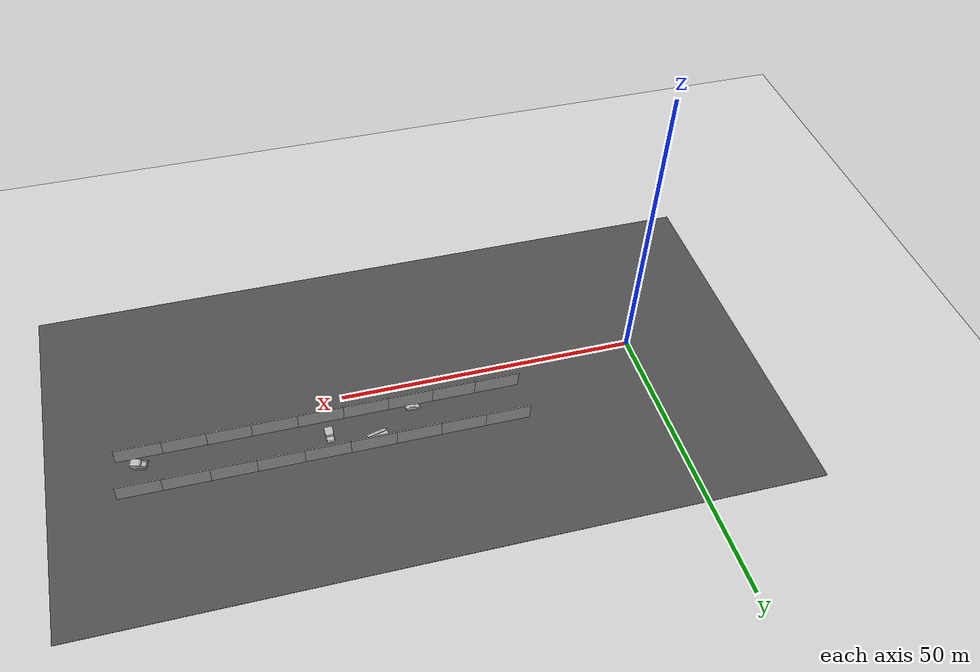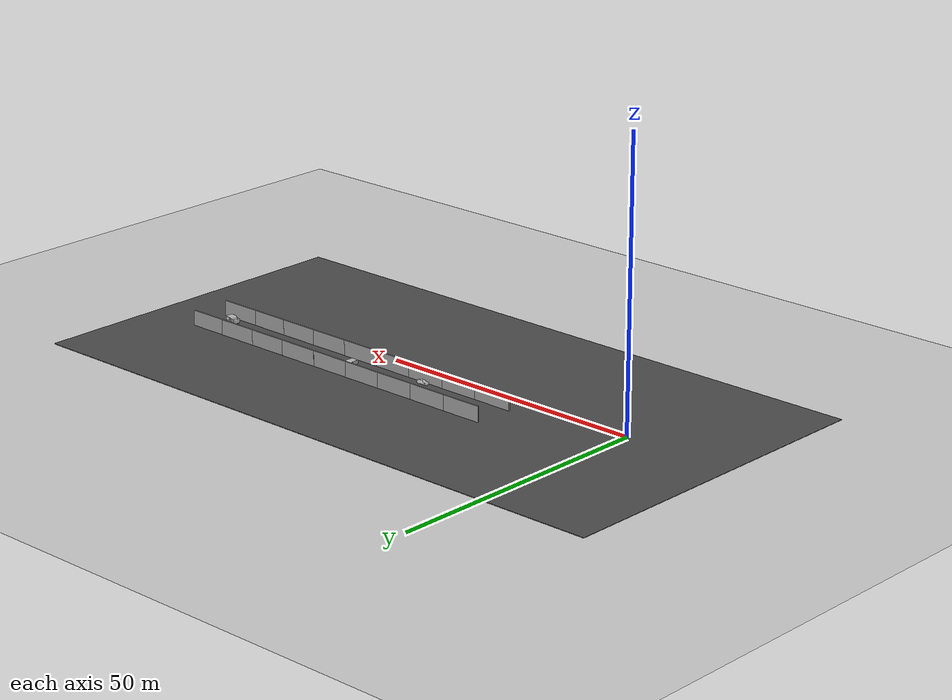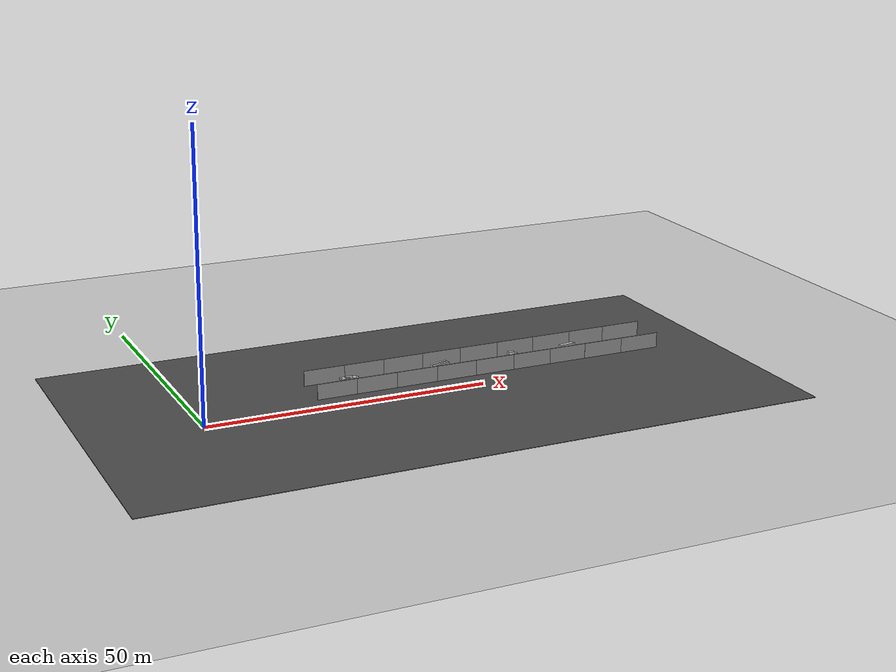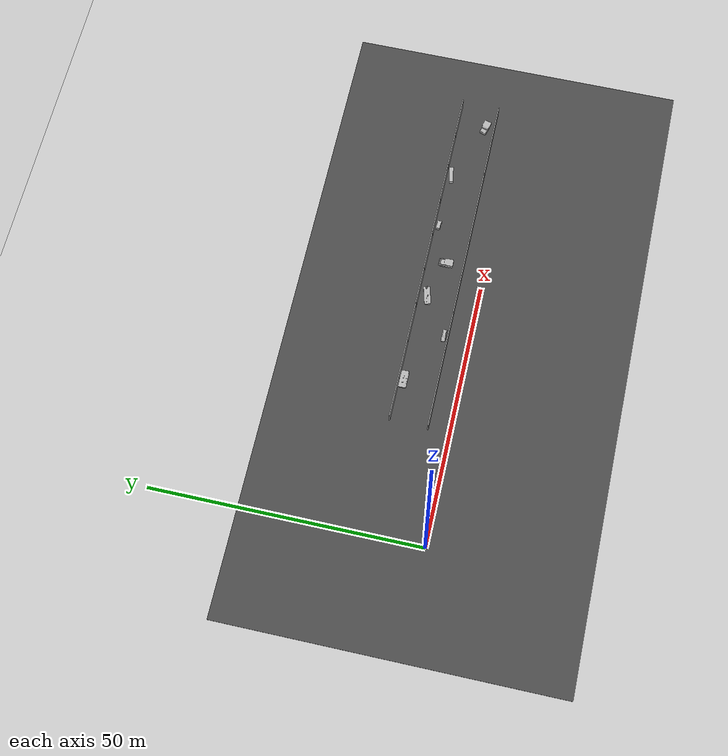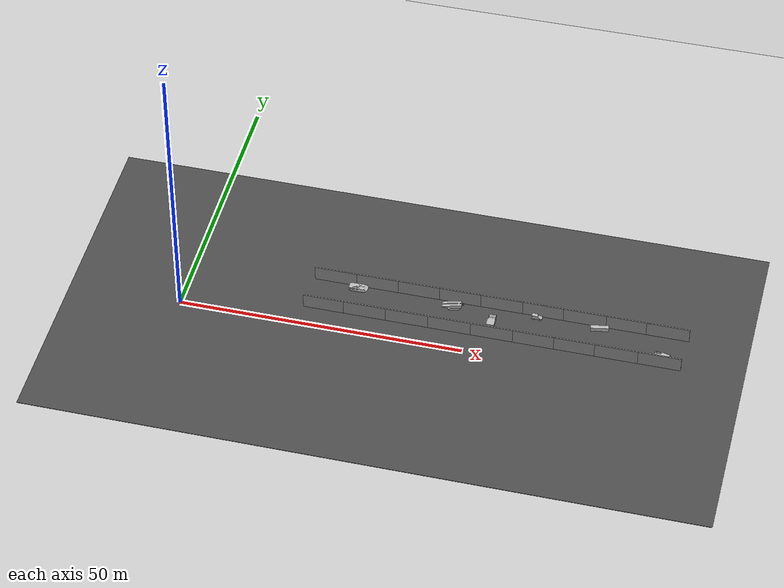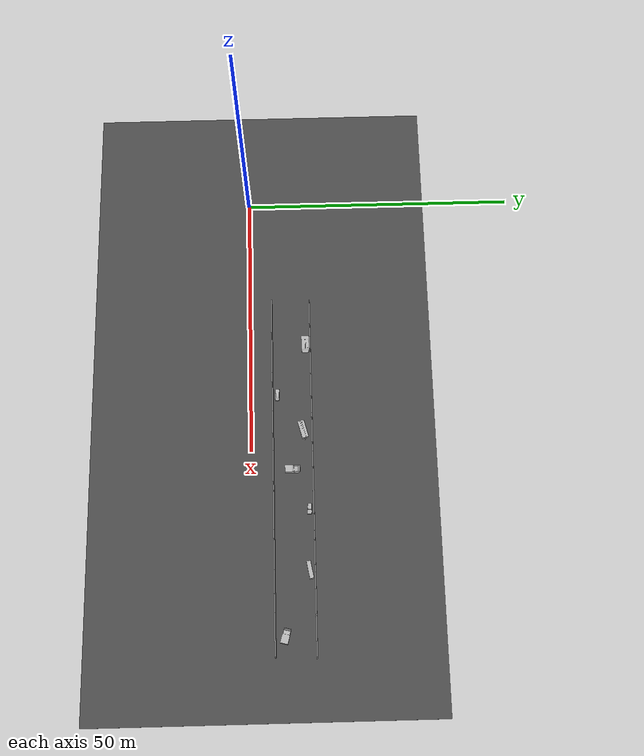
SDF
<sdf version="1.6">
 <world name="default">
  <light name="sun" type="directional">
   <pose>0 0 10 0 -0 0</pose>
   <diffuse>0.8 0.8 0.8 1</diffuse>
   <specular>0.2 0.2 0.2 1</specular>
   <attenuation>
    <range>1000</range>
    <constant>0.9</constant>
    <linear>0.01</linear>
    <quadratic>0.001</quadratic>
   </attenuation>
   <direction>-0.5 0.1 -0.9</direction>
  </light>
  <model name="ground_plane">
   <static>1</static>
   <link name="link">
    <collision name="collision">
     <geometry><plane><normal>0 0 1</normal><size>100 100</size></plane></geometry>
     <surface>
      <contact><collide_bitmask>65535</collide_bitmask></contact>
      <friction><ode><mu>100</mu><mu2>50</mu2></ode></friction>
     </surface>
    </collision>
    <visual name="visual">
     <cast_shadows>0</cast_shadows>
     <geometry><plane><normal>0 0 1</normal><size>100 100</size></plane></geometry>
     <material>
      <script><uri>file://media/materials/scripts/gazebo.material</uri><name>Gazebo/Grey</name></script>
     </material>
    </visual>
   </link>
  </model>
  <gravity>0 0 -9.8</gravity>
  <magnetic_field>6e-06 2.3e-05 -4.2e-05</magnetic_field>
  <atmosphere type="adiabatic"/>
  <physics name="default_physics" default="0" type="ode">
   <max_step_size>0.001</max_step_size>
   <real_time_factor>1</real_time_factor>
   <real_time_update_rate>1000</real_time_update_rate>
  </physics>
  <scene><ambient>0.4 0.4 0.4 1</ambient><background>0.7 0.7 0.7 1</background><shadows>1</shadows></scene>
  <audio><device>default</device></audio>
  <spherical_coordinates>
   <surface_model>EARTH_WGS84</surface_model>
   <latitude_deg>0</latitude_deg>
   <longitude_deg>0</longitude_deg>
   <elevation>0</elevation>
   <heading_deg>0</heading_deg>
  </spherical_coordinates>
  <light name="sun" type="directional">
   <pose>0 0 10 0 -0 0</pose>
   <diffuse>0.8 0.8 0.8 1</diffuse>
   <specular>0.2 0.2 0.2 1</specular>
   <attenuation>
    <range>1000</range>
    <constant>0.9</constant>
    <linear>0.01</linear>
    <quadratic>0.001</quadratic>
   </attenuation>
   <direction>-0.5 0.1 -0.9</direction>
  </light>
  <light name="sun" type="directional">
   <pose>0 0 10 0 -0 0</pose>
   <diffuse>0.8 0.8 0.8 1</diffuse>
   <specular>0.2 0.2 0.2 1</specular>
   <attenuation>
    <range>1000</range>
    <constant>0.9</constant>
    <linear>0.01</linear>
    <quadratic>0.001</quadratic>
   </attenuation>
   <direction>-0.5 0.1 -0.9</direction>
  </light>
  <physics name="default_physics" default="0" type="ode">
   <ode>
    <solver>
     <type>quick</type>
     <iters>10</iters>
     <sor>1</sor>
     <use_dynamic_moi_rescaling>0</use_dynamic_moi_rescaling>
    </solver>
    <constraints>
     <cfm>0</cfm>
     <erp>0.2</erp>
     <contact_max_correcting_vel>100</contact_max_correcting_vel>
     <contact_surface_layer>0.001</contact_surface_layer>
    </constraints>
   </ode>
   <max_step_size>0.004</max_step_size>
   <real_time_factor>1</real_time_factor>
   <real_time_update_rate>250</real_time_update_rate>
  </physics>
  <model name="grey_wall">
   <static>1</static>
   <link name="link">
    <pose>0 0 1.4 0 -0 0</pose>
    <collision name="collision"><geometry><box><size>7.5 0.2 2.8</size></box></geometry></collision>
    <visual name="visual">
     <cast_shadows>0</cast_shadows>
     <geometry><box><size>7.5 0.2 2.8</size></box></geometry>
     <material>
      <script>
       <uri>model://grey_wall/materials/scripts</uri>
       <uri>model://grey_wall/materials/textures</uri>
       <name>vrc/grey_wall</name>
      </script>
     </material>
    </visual>
   </link>
   <pose>54.3408 4.09538 0 0 -0 0</pose>
  </model>
  <model name="grey_wall_clone">
   <static>1</static>
   <link name="link">
    <pose>0 0 1.4 0 -0 0</pose>
    <collision name="collision"><geometry><box><size>7.5 0.2 2.8</size></box></geometry></collision>
    <visual name="visual">
     <cast_shadows>0</cast_shadows>
     <geometry><box><size>7.5 0.2 2.8</size></box></geometry>
     <material>
      <script>
       <uri>model://grey_wall/materials/scripts</uri>
       <uri>model://grey_wall/materials/textures</uri>
       <name>vrc/grey_wall</name>
      </script>
     </material>
    </visual>
   </link>
   <pose>61.7868 4.08071 0 0 -0 0</pose>
  </model>
  <model name="grey_wall_clone_0">
   <static>1</static>
   <link name="link">
    <pose>0 0 1.4 0 -0 0</pose>
    <collision name="collision"><geometry><box><size>7.5 0.2 2.8</size></box></geometry></collision>
    <visual name="visual">
     <cast_shadows>0</cast_shadows>
     <geometry><box><size>7.5 0.2 2.8</size></box></geometry>
     <material>
      <script>
       <uri>model://grey_wall/materials/scripts</uri>
       <uri>model://grey_wall/materials/textures</uri>
       <name>vrc/grey_wall</name>
      </script>
     </material>
    </visual>
   </link>
   <pose>68.9621 4.07899 0 0 -0 0</pose>
  </model>
  <model name="grey_wall_clone_1">
   <static>1</static>
   <link name="link">
    <pose>0 0 1.4 0 -0 0</pose>
    <collision name="collision"><geometry><box><size>7.5 0.2 2.8</size></box></geometry></collision>
    <visual name="visual">
     <cast_shadows>0</cast_shadows>
     <geometry><box><size>7.5 0.2 2.8</size></box></geometry>
     <material>
      <script>
       <uri>model://grey_wall/materials/scripts</uri>
       <uri>model://grey_wall/materials/textures</uri>
       <name>vrc/grey_wall</name>
      </script>
     </material>
    </visual>
   </link>
   <pose>76.0179 4.06558 0 0 -0 0</pose>
  </model>
  <model name="grey_wall_clone_2">
   <static>1</static>
   <link name="link">
    <pose>0 0 1.4 0 -0 0</pose>
    <collision name="collision"><geometry><box><size>7.5 0.2 2.8</size></box></geometry></collision>
    <visual name="visual">
     <cast_shadows>0</cast_shadows>
     <geometry><box><size>7.5 0.2 2.8</size></box></geometry>
     <material>
      <script>
       <uri>model://grey_wall/materials/scripts</uri>
       <uri>model://grey_wall/materials/textures</uri>
       <name>vrc/grey_wall</name>
      </script>
     </material>
    </visual>
   </link>
   <pose>83.4833 4.06784 0 0 -0 0</pose>
  </model>
  <model name="grey_wall_clone_3">
   <static>1</static>
   <link name="link">
    <pose>0 0 1.4 0 -0 0</pose>
    <collision name="collision"><geometry><box><size>7.5 0.2 2.8</size></box></geometry></collision>
    <visual name="visual">
     <cast_shadows>0</cast_shadows>
     <geometry><box><size>7.5 0.2 2.8</size></box></geometry>
     <material>
      <script>
       <uri>model://grey_wall/materials/scripts</uri>
       <uri>model://grey_wall/materials/textures</uri>
       <name>vrc/grey_wall</name>
      </script>
     </material>
    </visual>
   </link>
   <pose>46.9037 4.09457 0 0 -0 0</pose>
  </model>
  <model name="grey_wall_clone_4">
   <static>1</static>
   <link name="link">
    <pose>0 0 1.4 0 -0 0</pose>
    <collision name="collision"><geometry><box><size>7.5 0.2 2.8</size></box></geometry></collision>
    <visual name="visual">
     <cast_shadows>0</cast_shadows>
     <geometry><box><size>7.5 0.2 2.8</size></box></geometry>
     <material>
      <script>
       <uri>model://grey_wall/materials/scripts</uri>
       <uri>model://grey_wall/materials/textures</uri>
       <name>vrc/grey_wall</name>
      </script>
     </material>
    </visual>
   </link>
   <pose>39.4192 4.09932 0 0 -0 0</pose>
  </model>
  <model name="grey_wall_clone_5">
   <static>1</static>
   <link name="link">
    <pose>0 0 1.4 0 -0 0</pose>
    <collision name="collision"><geometry><box><size>7.5 0.2 2.8</size></box></geometry></collision>
    <visual name="visual">
     <cast_shadows>0</cast_shadows>
     <geometry><box><size>7.5 0.2 2.8</size></box></geometry>
     <material>
      <script>
       <uri>model://grey_wall/materials/scripts</uri>
       <uri>model://grey_wall/materials/textures</uri>
       <name>vrc/grey_wall</name>
      </script>
     </material>
    </visual>
   </link>
   <pose>31.9554 4.09979 0 0 -0 0</pose>
  </model>
  <model name="grey_wall_clone_6">
   <static>1</static>
   <link name="link">
    <pose>0 0 1.4 0 -0 0</pose>
    <collision name="collision"><geometry><box><size>7.5 0.2 2.8</size></box></geometry></collision>
    <visual name="visual">
     <cast_shadows>0</cast_shadows>
     <geometry><box><size>7.5 0.2 2.8</size></box></geometry>
     <material>
      <script>
       <uri>model://grey_wall/materials/scripts</uri>
       <uri>model://grey_wall/materials/textures</uri>
       <name>vrc/grey_wall</name>
      </script>
     </material>
    </visual>
   </link>
   <pose>24.7785 4.10037 0 0 -0 0</pose>
  </model>
  <model name="grey_wall_clone_6_clone">
   <static>1</static>
   <link name="link">
    <pose>0 0 1.4 0 -0 0</pose>
    <collision name="collision"><geometry><box><size>7.5 0.2 2.8</size></box></geometry></collision>
    <visual name="visual">
     <cast_shadows>0</cast_shadows>
     <geometry><box><size>7.5 0.2 2.8</size></box></geometry>
     <material>
      <script>
       <uri>model://grey_wall/materials/scripts</uri>
       <uri>model://grey_wall/materials/textures</uri>
       <name>vrc/grey_wall</name>
      </script>
     </material>
    </visual>
   </link>
   <pose>25.0385 11.1774 0 0 -0 0</pose>
  </model>
  <model name="grey_wall_clone_6_clone_0">
   <static>1</static>
   <link name="link">
    <pose>0 0 1.4 0 -0 0</pose>
    <collision name="collision"><geometry><box><size>7.5 0.2 2.8</size></box></geometry></collision>
    <visual name="visual">
     <cast_shadows>0</cast_shadows>
     <geometry><box><size>7.5 0.2 2.8</size></box></geometry>
     <material>
      <script>
       <uri>model://grey_wall/materials/scripts</uri>
       <uri>model://grey_wall/materials/textures</uri>
       <name>vrc/grey_wall</name>
      </script>
     </material>
    </visual>
   </link>
   <pose>32.4484 11.1793 0 0 -0 0</pose>
  </model>
  <model name="grey_wall_clone_6_clone_1">
   <static>1</static>
   <link name="link">
    <pose>0 0 1.4 0 -0 0</pose>
    <collision name="collision"><geometry><box><size>7.5 0.2 2.8</size></box></geometry></collision>
    <visual name="visual">
     <cast_shadows>0</cast_shadows>
     <geometry><box><size>7.5 0.2 2.8</size></box></geometry>
     <material>
      <script>
       <uri>model://grey_wall/materials/scripts</uri>
       <uri>model://grey_wall/materials/textures</uri>
       <name>vrc/grey_wall</name>
      </script>
     </material>
    </visual>
   </link>
   <pose>39.8614 11.1887 0 0 -0 0</pose>
  </model>
  <model name="grey_wall_clone_6_clone_2">
   <static>1</static>
   <link name="link">
    <pose>0 0 1.4 0 -0 0</pose>
    <collision name="collision"><geometry><box><size>7.5 0.2 2.8</size></box></geometry></collision>
    <visual name="visual">
     <cast_shadows>0</cast_shadows>
     <geometry><box><size>7.5 0.2 2.8</size></box></geometry>
     <material>
      <script>
       <uri>model://grey_wall/materials/scripts</uri>
       <uri>model://grey_wall/materials/textures</uri>
       <name>vrc/grey_wall</name>
      </script>
     </material>
    </visual>
   </link>
   <pose>47.2014 11.2064 0 0 -0 0</pose>
  </model>
  <model name="grey_wall_clone_6_clone_3">
   <static>1</static>
   <link name="link">
    <pose>0 0 1.4 0 -0 0</pose>
    <collision name="collision"><geometry><box><size>7.5 0.2 2.8</size></box></geometry></collision>
    <visual name="visual">
     <cast_shadows>0</cast_shadows>
     <geometry><box><size>7.5 0.2 2.8</size></box></geometry>
     <material>
      <script>
       <uri>model://grey_wall/materials/scripts</uri>
       <uri>model://grey_wall/materials/textures</uri>
       <name>vrc/grey_wall</name>
      </script>
     </material>
    </visual>
   </link>
   <pose>54.5777 11.2073 0 0 -0 0</pose>
  </model>
  <model name="grey_wall_clone_6_clone_4">
   <static>1</static>
   <link name="link">
    <pose>0 0 1.4 0 -0 0</pose>
    <collision name="collision"><geometry><box><size>7.5 0.2 2.8</size></box></geometry></collision>
    <visual name="visual">
     <cast_shadows>0</cast_shadows>
     <geometry><box><size>7.5 0.2 2.8</size></box></geometry>
     <material>
      <script>
       <uri>model://grey_wall/materials/scripts</uri>
       <uri>model://grey_wall/materials/textures</uri>
       <name>vrc/grey_wall</name>
      </script>
     </material>
    </visual>
   </link>
   <pose>61.9367 11.22 0 0 -0 0</pose>
  </model>
  <model name="grey_wall_clone_6_clone_5">
   <static>1</static>
   <link name="link">
    <pose>0 0 1.4 0 -0 0</pose>
    <collision name="collision"><geometry><box><size>7.5 0.2 2.8</size></box></geometry></collision>
    <visual name="visual">
     <cast_shadows>0</cast_shadows>
     <geometry><box><size>7.5 0.2 2.8</size></box></geometry>
     <material>
      <script>
       <uri>model://grey_wall/materials/scripts</uri>
       <uri>model://grey_wall/materials/textures</uri>
       <name>vrc/grey_wall</name>
      </script>
     </material>
    </visual>
   </link>
   <pose>69.2597 11.2151 0 0 -0 0</pose>
  </model>
  <model name="grey_wall_clone_6_clone_6">
   <static>1</static>
   <link name="link">
    <pose>0 0 1.4 0 -0 0</pose>
    <collision name="collision"><geometry><box><size>7.5 0.2 2.8</size></box></geometry></collision>
    <visual name="visual">
     <cast_shadows>0</cast_shadows>
     <geometry><box><size>7.5 0.2 2.8</size></box></geometry>
     <material>
      <script>
       <uri>model://grey_wall/materials/scripts</uri>
       <uri>model://grey_wall/materials/textures</uri>
       <name>vrc/grey_wall</name>
      </script>
     </material>
    </visual>
   </link>
   <pose>76.7128 11.217 0 0 -0 0</pose>
  </model>
  <model name="grey_wall_clone_6_clone_7">
   <static>1</static>
   <link name="link">
    <pose>0 0 1.4 0 -0 0</pose>
    <collision name="collision"><geometry><box><size>7.5 0.2 2.8</size></box></geometry></collision>
    <visual name="visual">
     <cast_shadows>0</cast_shadows>
     <geometry><box><size>7.5 0.2 2.8</size></box></geometry>
     <material>
      <script>
       <uri>model://grey_wall/materials/scripts</uri>
       <uri>model://grey_wall/materials/textures</uri>
       <name>vrc/grey_wall</name>
      </script>
     </material>
    </visual>
   </link>
   <pose>83.7379 11.2056 0 0 -0 0</pose>
  </model>
  <model name="asphalt_plane">
   <static>1</static>
   <link name="link">
    <collision name="collision"><geometry><box><size>117.998 63.0129 0.1</size></box></geometry></collision>
    <visual name="visual">
     <cast_shadows>0</cast_shadows>
     <geometry><box><size>117.998 63.0129 0.1</size></box></geometry>
     <material>
      <script>
       <uri>model://asphalt_plane/materials/scripts</uri>
       <uri>model://asphalt_plane/materials/textures</uri>
       <name>vrc/asphalt</name>
      </script>
     </material>
    </visual>
   </link>
   <pose>39.0598 2.25319 0 0 -0 0</pose>
  </model>
  <model name="m9ace">
   <static>1</static>
   <link name="link">
    <inertial>
     <mass>100</mass>
     <inertia><ixx>1</ixx><ixy>0</ixy><ixz>0</ixz><iyy>1</iyy><iyz>0</iyz><izz>1</izz></inertia>
    </inertial>
    <collision name="collision">
     <geometry><mesh><scale>0.5 0.5 0.5</scale><uri>model://rotem_gw/m9ace/meshes/m9ace.obj</uri></mesh></geometry>
     <surface><contact><ode><max_vel>0.1</max_vel><min_depth>0.001</min_depth></ode></contact></surface>
    </collision>
    <visual name="visual">
     <pose>0 0 0 1.5708 -0 0</pose>
     <geometry><mesh><scale>0.5 0.5 0.5</scale><uri>model://rotem_gw/m9ace/meshes/m9ace.obj</uri></mesh></geometry>
    </visual>
   </link>
   <pose>83.339 5.86518 0 0 -0 1.31156</pose>
  </model>
  <model name="k1avlb">
   <static>1</static>
   <link name="link">
    <inertial>
     <mass>100</mass>
     <inertia><ixx>1</ixx><ixy>0</ixy><ixz>0</ixz><iyy>1</iyy><iyz>0</iyz><izz>1</izz></inertia>
    </inertial>
    <collision name="collision">
     <geometry>
      <mesh><scale>0.3 0.3 0.3</scale><uri>model://rotem_gw/k1avlb/meshes/k1avlb.obj</uri></mesh>
     </geometry>
     <surface><contact><ode><max_vel>0.1</max_vel><min_depth>0.001</min_depth></ode></contact></surface>
    </collision>
    <visual name="visual">
     <pose>0 0 0 1.5708 -0 0</pose>
     <geometry>
      <mesh><scale>0.3 0.3 0.3</scale><uri>model://rotem_gw/k1avlb/meshes/k1avlb.obj</uri></mesh>
     </geometry>
    </visual>
   </link>
   <pose>46.4937 9.64532 0 0 -0 1.82878</pose>
  </model>
  <model name="k131">
   <static>1</static>
   <link name="link">
    <inertial>
     <mass>100</mass>
     <inertia><ixx>1</ixx><ixy>0</ixy><ixz>0</ixz><iyy>1</iyy><iyz>0</iyz><izz>1</izz></inertia>
    </inertial>
    <collision name="collision">
     <geometry><mesh><scale>0.5 0.5 0.5</scale><uri>model://rotem_gw/k131/meshes/k131.obj</uri></mesh></geometry>
     <surface><contact><ode><max_vel>0.1</max_vel><min_depth>0.001</min_depth></ode></contact></surface>
    </collision>
    <visual name="visual">
     <pose>0 0 0 1.5708 -0 0</pose>
     <geometry><mesh><scale>0.5 0.5 0.5</scale><uri>model://rotem_gw/k131/meshes/k131.obj</uri></mesh></geometry>
    </visual>
   </link>
   <pose>61.0559 10.4477 0.056058 0 0 -1.60555</pose>
  </model>
  <model name="bus">
   <static>1</static>
   <link name="link">
    <inertial>
     <mass>100</mass>
     <inertia><ixx>1</ixx><ixy>0</ixy><ixz>0</ixz><iyy>1</iyy><iyz>0</iyz><izz>1</izz></inertia>
    </inertial>
    <collision name="collision">
     <geometry><mesh><scale>0.3 0.3 0.3</scale><uri>model://rotem_gw/bus/meshes/bus.obj</uri></mesh></geometry>
     <surface><contact><ode><max_vel>0.1</max_vel><min_depth>0.001</min_depth></ode></contact></surface>
    </collision>
    <visual name="visual">
     <pose>0 0 0 1.5708 -0 0</pose>
     <geometry><mesh><scale>0.3 0.3 0.3</scale><uri>model://rotem_gw/bus/meshes/bus.obj</uri></mesh></geometry>
    </visual>
   </link>
   <pose>72.0656 10.3064 0 0 -0 1.74937</pose>
  </model>
  <model name="car">
   <static>1</static>
   <link name="link">
    <inertial>
     <mass>100</mass>
     <inertia><ixx>1</ixx><ixy>0</ixy><ixz>0</ixz><iyy>1</iyy><iyz>0</iyz><izz>1</izz></inertia>
    </inertial>
    <collision name="collision">
     <geometry><mesh><scale>0.5 0.5 0.5</scale><uri>model://rotem_gw/car/meshes/car.obj</uri></mesh></geometry>
     <surface><contact><ode><max_vel>0.1</max_vel><min_depth>0.001</min_depth></ode></contact></surface>
    </collision>
    <visual name="visual">
     <pose>0 0 0 1.5708 -0 0</pose>
     <geometry><mesh><scale>0.5 0.5 0.5</scale><uri>model://rotem_gw/car/meshes/car.obj</uri></mesh></geometry>
    </visual>
   </link>
   <pose>39.2526 4.93794 0.070531 0 -0 1.56471</pose>
  </model>
  <model name="bmp1">
   <static>1</static>
   <link name="link">
    <inertial>
     <mass>100</mass>
     <inertia><ixx>1</ixx><ixy>0</ixy><ixz>0</ixz><iyy>1</iyy><iyz>0</iyz><izz>1</izz></inertia>
    </inertial>
    <collision name="collision">
     <geometry><mesh><scale>0.5 0.5 0.5</scale><uri>model://rotem_gw/bmp1/meshes/bmp1.obj</uri></mesh></geometry>
     <surface><contact><ode><max_vel>0.1</max_vel><min_depth>0.001</min_depth></ode></contact></surface>
    </collision>
    <visual name="visual">
     <pose>0 0 0 1.5708 -0 0</pose>
     <geometry><mesh><scale>0.5 0.5 0.5</scale><uri>model://rotem_gw/bmp1/meshes/bmp1.obj</uri></mesh></geometry>
    </visual>
   </link>
   <pose>29.3774 10.2949 0 0 0 -1.57027</pose>
  </model>
  <model name="m9ace_0">
   <static>1</static>
   <link name="link">
    <inertial>
     <mass>100</mass>
     <inertia><ixx>1</ixx><ixy>0</ixy><ixz>0</ixz><iyy>1</iyy><iyz>0</iyz><izz>1</izz></inertia>
    </inertial>
    <collision name="collision">
     <geometry><mesh><scale>0.5 0.5 0.5</scale><uri>model://rotem_gw/m9ace/meshes/m9ace.obj</uri></mesh></geometry>
     <surface><contact><ode><max_vel>0.1</max_vel><min_depth>0.001</min_depth></ode></contact></surface>
    </collision>
    <visual name="visual">
     <pose>0 0 0 1.5708 -0 0</pose>
     <geometry><mesh><scale>0.5 0.5 0.5</scale><uri>model://rotem_gw/m9ace/meshes/m9ace.obj</uri></mesh></geometry>
    </visual>
   </link>
   <pose>53.5522 7.71125 0 0 -0 0</pose>
  </model>
 </world>
</sdf>
